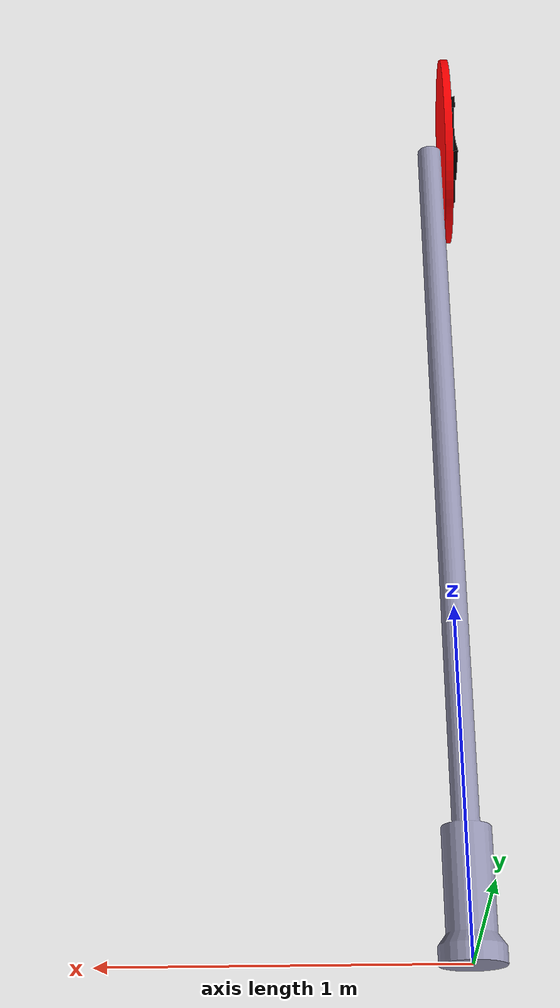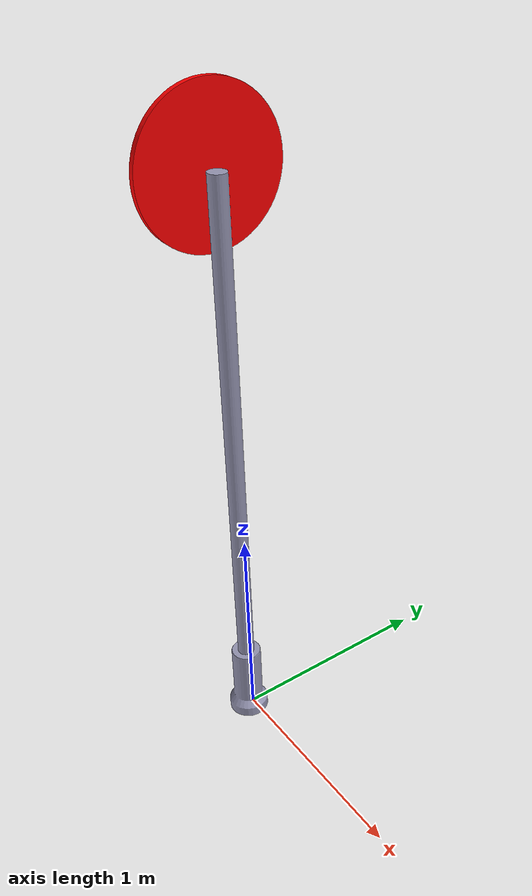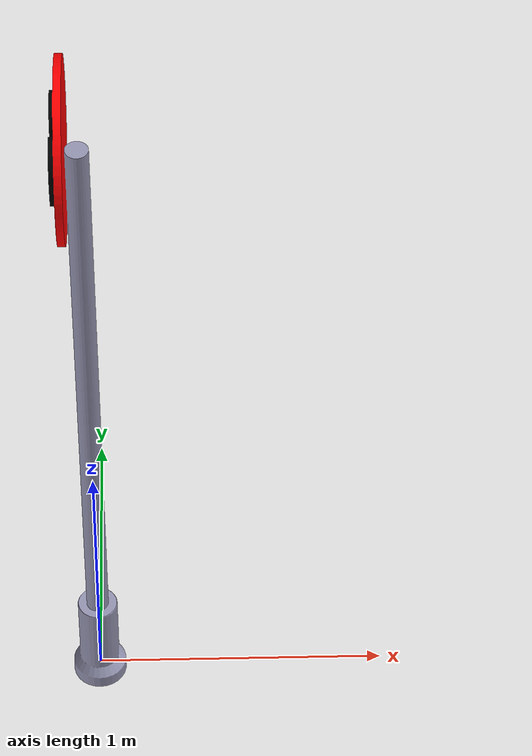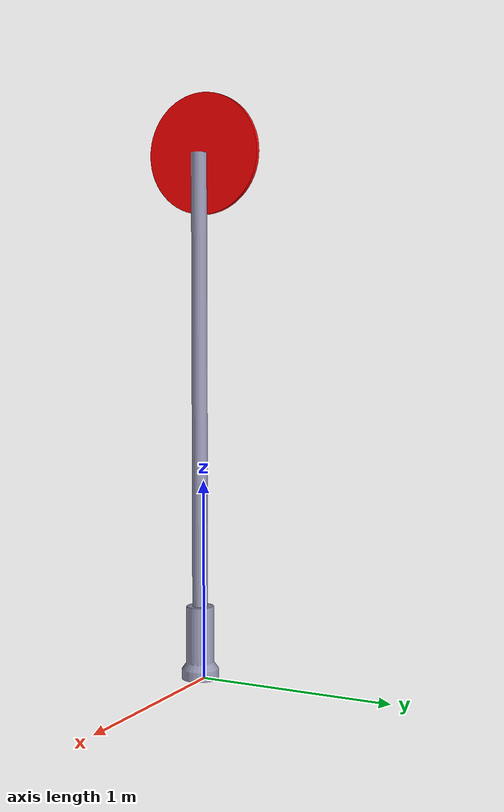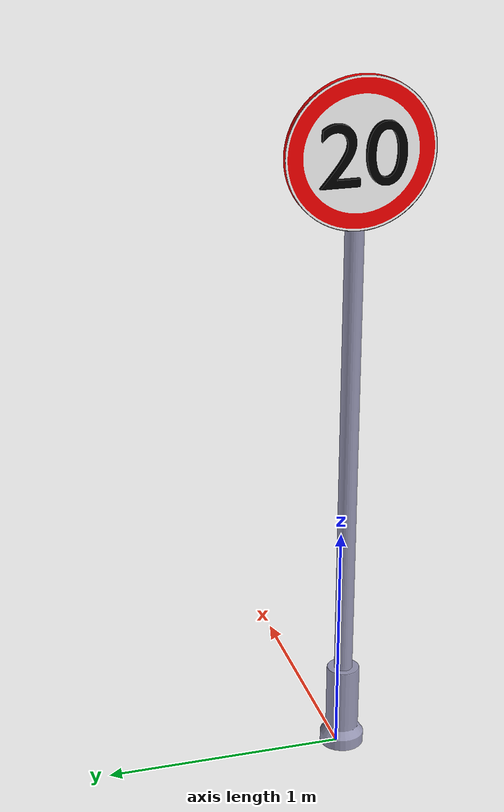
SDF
<?xml version="1.0"?>
<sdf version="1.5">
  <model name='AzamiHizSiniri20'>
    <static>true</static>
    <link name="body">
      <pose>0 0 0 0 0 0</pose>

        <visual name="visual">
          <geometry>
            <mesh><uri>model://AzamiHizSiniri20/meshes/AzamiHizSiniri20.dae</uri></mesh>
          </geometry>
        </visual>

        <collision name="collision">
          <geometry>
            <mesh><uri>model://AzamiHizSiniri20/meshes/AzamiHizSiniri20.dae</uri></mesh>
          </geometry>
        </collision>

        <!-- TODO: Replace with accurate values of mass and inertia -->
        <inertial>
          <mass>1.0</mass>
          <inertia>
            <ixx>0.1</ixx>
            <iyy>0.1</iyy>
            <izz>0.1</izz>
          </inertia>
        </inertial>
    </link>
  </model>
</sdf>
